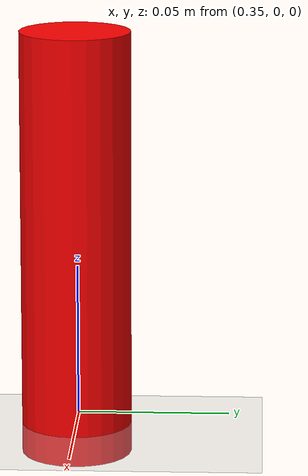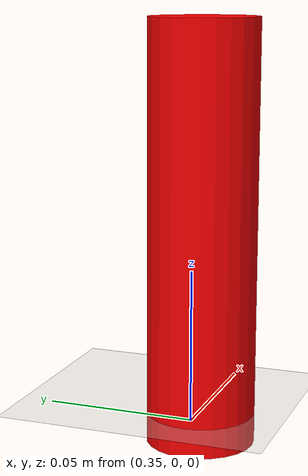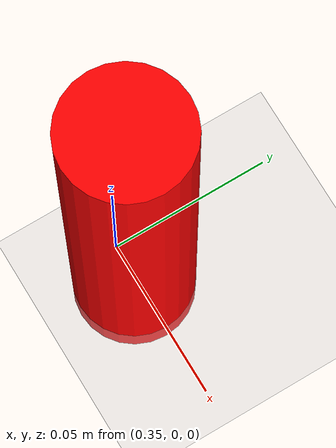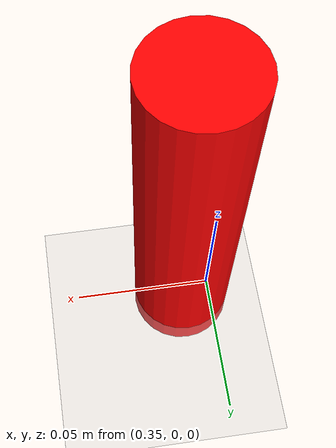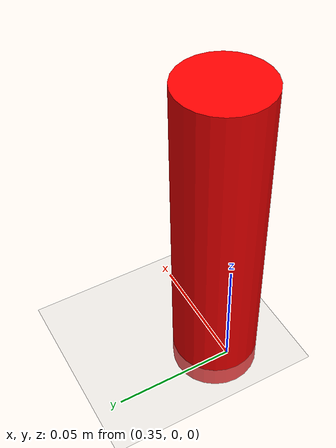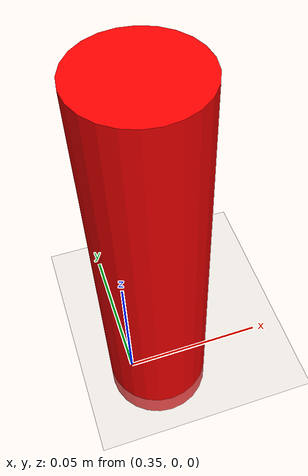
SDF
<?xml version="1.0" ?>
<sdf version="1.7">
  <world name="default">

    <gui fullscreen="0">
      <!-- Camera framed on this scene's workspace -->
      <plugin filename="MinimalScene" name="3D View">
        <gz-gui>
          <title>3D View</title>
          <property type="bool" key="showTitleBar">false</property>
          <property type="string" key="state">docked</property>
        </gz-gui>
        <engine>ogre2</engine>
        <scene>scene</scene>
        <ambient_light>0.4 0.4 0.4</ambient_light>
        <background_color>0.8 0.8 0.8</background_color>
        <camera_pose>-0.9 -0.9 0.9 0 0.5 0.62</camera_pose>
      </plugin>
      <plugin filename="EntityContextMenuPlugin" name="Entity context menu">
        <gz-gui>
          <property key="state" type="string">floating</property>
          <property key="width" type="double">5</property>
          <property key="height" type="double">5</property>
          <property key="showTitleBar" type="bool">false</property>
        </gz-gui>
      </plugin>
      <plugin filename="GzSceneManager" name="Scene Manager">
        <gz-gui>
          <property key="resizable" type="bool">false</property>
          <property key="width" type="double">5</property>
          <property key="height" type="double">5</property>
          <property key="state" type="string">floating</property>
          <property key="showTitleBar" type="bool">false</property>
        </gz-gui>
      </plugin>
      <plugin filename="InteractiveViewControl" name="Interactive view control">
        <gz-gui>
          <property key="resizable" type="bool">false</property>
          <property key="width" type="double">5</property>
          <property key="height" type="double">5</property>
          <property key="state" type="string">floating</property>
          <property key="showTitleBar" type="bool">false</property>
        </gz-gui>
      </plugin>
      <plugin filename="CameraTracking" name="Camera Tracking">
        <gz-gui>
          <property key="resizable" type="bool">false</property>
          <property key="width" type="double">5</property>
          <property key="height" type="double">5</property>
          <property key="state" type="string">floating</property>
          <property key="showTitleBar" type="bool">false</property>
        </gz-gui>
      </plugin>
      <plugin filename="MarkerManager" name="Marker manager">
        <gz-gui>
          <property key="resizable" type="bool">false</property>
          <property key="width" type="double">5</property>
          <property key="height" type="double">5</property>
          <property key="state" type="string">floating</property>
          <property key="showTitleBar" type="bool">false</property>
        </gz-gui>
      </plugin>
      <plugin filename="SelectEntities" name="Select Entities">
        <gz-gui>
          <property key="resizable" type="bool">false</property>
          <property key="width" type="double">5</property>
          <property key="height" type="double">5</property>
          <property key="state" type="string">floating</property>
          <property key="showTitleBar" type="bool">false</property>
        </gz-gui>
      </plugin>
      <plugin filename="Spawn" name="Spawn Entities">
        <gz-gui>
          <property key="resizable" type="bool">false</property>
          <property key="width" type="double">5</property>
          <property key="height" type="double">5</property>
          <property key="state" type="string">floating</property>
          <property key="showTitleBar" type="bool">false</property>
        </gz-gui>
      </plugin>
      <plugin filename="VisualizationCapabilities" name="Visualization Capabilities">
        <gz-gui>
          <property key="resizable" type="bool">false</property>
          <property key="width" type="double">5</property>
          <property key="height" type="double">5</property>
          <property key="state" type="string">floating</property>
          <property key="showTitleBar" type="bool">false</property>
        </gz-gui>
      </plugin>
      <plugin filename="WorldControl" name="World control">
        <gz-gui>
          <title>World control</title>
          <property type="bool" key="showTitleBar">false</property>
          <property type="bool" key="resizable">false</property>
          <property type="double" key="height">72</property>
          <property type="double" key="z">1</property>
          <property type="string" key="state">floating</property>
          <anchors target="3D View">
            <line own="left" target="left"/>
            <line own="bottom" target="bottom"/>
          </anchors>
        </gz-gui>
        <play_pause>true</play_pause>
        <step>true</step>
        <start_paused>true</start_paused>
        <use_event>true</use_event>
      </plugin>
      <plugin filename="WorldStats" name="World stats">
        <gz-gui>
          <title>World stats</title>
          <property type="bool" key="showTitleBar">false</property>
          <property type="bool" key="resizable">false</property>
          <property type="double" key="height">110</property>
          <property type="double" key="width">290</property>
          <property type="double" key="z">1</property>
          <property type="string" key="state">floating</property>
          <anchors target="3D View">
            <line own="right" target="right"/>
            <line own="bottom" target="bottom"/>
          </anchors>
        </gz-gui>
        <sim_time>true</sim_time>
        <real_time>true</real_time>
        <real_time_factor>true</real_time_factor>
        <iterations>true</iterations>
      </plugin>
      <plugin filename="EntityTree" name="Entity tree">
        <gz-gui>
          <property type="bool" key="showTitleBar">false</property>
          <property type="string" key="state">docked</property>
        </gz-gui>
      </plugin>
    </gui>
    <physics name="default_physics" type="ode">
      <max_step_size>0.001</max_step_size>
      <real_time_factor>1</real_time_factor>
      <gravity>0.0 0.0 -9.8</gravity>
    </physics>

    <plugin filename="gz-sim-physics-system" name="gz::sim::systems::Physics"/>
    <plugin filename="gz-sim-user-commands-system" name="gz::sim::systems::UserCommands"/>
    <plugin filename="gz-sim-scene-broadcaster-system" name="gz::sim::systems::SceneBroadcaster"/>
    <plugin filename="gz-sim-sensors-system" name="gz::sim::systems::Sensors">
      <render_engine>ogre2</render_engine>
    </plugin>
    <plugin filename="gz-sim-contact-system" name="gz::sim::systems::Contact"/>

    <include>
      <uri>https://fuel.gazebosim.org/1.0/OpenRobotics/models/Sun</uri>
    </include>

    <include>
      <uri>https://fuel.gazebosim.org/1.0/OpenRobotics/models/Ground Plane</uri>
    </include>

    <!-- Same XY as pick_and_place_demo (~0.36 m reach); z for table_height:=0.0 -->
    <include>
      <uri>model://red_cylinder</uri>
      <name>red_cylinder</name>
      <pose>0.36 0.0 0.06 0 0 0</pose>
    </include>

    <!-- Matches the GUI's MinimalScene ambient_light/background_color above -->
    <scene>
      <ambient>0.4 0.4 0.4 1</ambient>
      <background>0.8 0.8 0.8 1</background>
      <shadows>true</shadows>
      <grid>false</grid>
    </scene>
  </world>
</sdf>

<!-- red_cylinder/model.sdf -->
<sdf version="1.6">
  <model name="red_cylinder">
    <static>false</static>
    <link name="link">
      <inertial>
        <mass>0.100</mass>
        <inertia>
          <ixx>0.00102893</ixx>
          <ixy>0</ixy>
          <ixz>0</ixz>
          <iyy>0.00102893</iyy>
          <iyz>0</iyz>
          <izz>0.0000162</izz>
        </inertia>
      </inertial>
      <collision name="collision">
        <geometry>
          <cylinder>
            <radius>0.018</radius>
            <length>0.14</length>
          </cylinder>
        </geometry>
        <surface>
          <friction>
            <ode>
              <mu>5.0</mu>
              <mu2>5.0</mu2>
              <fdir1>0 0 1</fdir1>
              <slip1>0.0001</slip1>
              <slip2>0.0001</slip2>
            </ode>
            <torsional>
              <coefficient>0.1</coefficient>
              <surface_radius>0.015</surface_radius>
              <use_patch_radius>true</use_patch_radius>
            </torsional>
          </friction>
          <contact>
            <ode>
              <kp>1e5</kp>
              <kd>10</kd>
              <max_vel>0.1</max_vel>
              <min_depth>0.001</min_depth>
              <soft_cfm>0.01</soft_cfm>
              <soft_erp>0.2</soft_erp>
            </ode>
          </contact>
          <bounce>
            <restitution_coefficient>0.2</restitution_coefficient>
            <threshold>0.01</threshold>
          </bounce>
        </surface>
      </collision>
      <visual name="visual">
        <geometry>
          <cylinder>
            <radius>0.018</radius>
            <length>0.14</length>
          </cylinder>
        </geometry>
        <material>
          <ambient>1.0 0.0 0.0 1</ambient>
          <diffuse>1.0 0.0 0.0 1</diffuse>
          <specular>0.5 0.5 0.5 1</specular>
          <emissive>0.1 0 0 1</emissive>
        </material>
      </visual>
    </link>
  </model>
</sdf>
